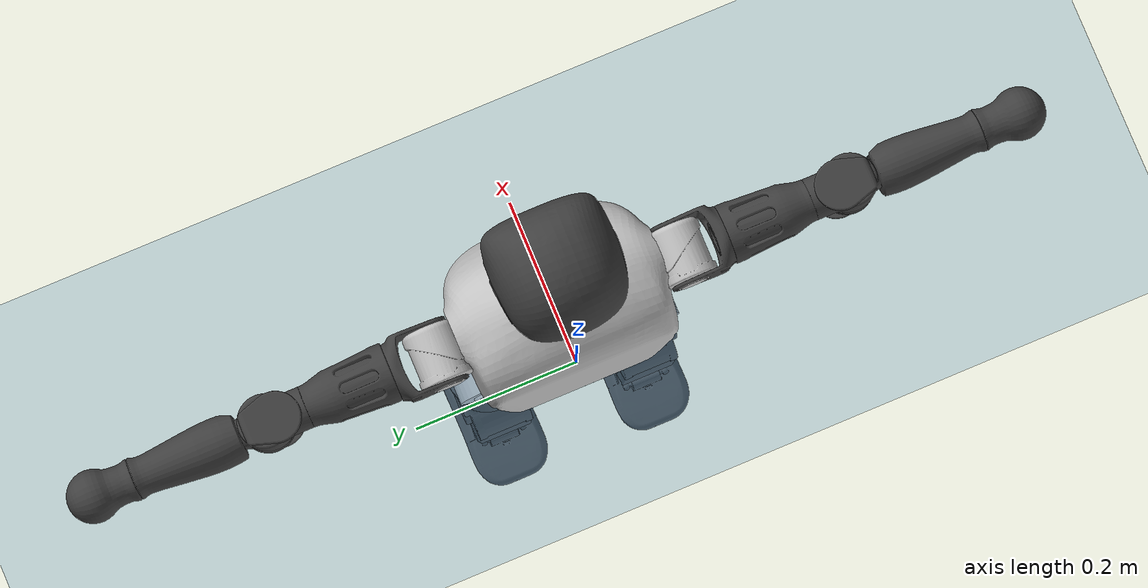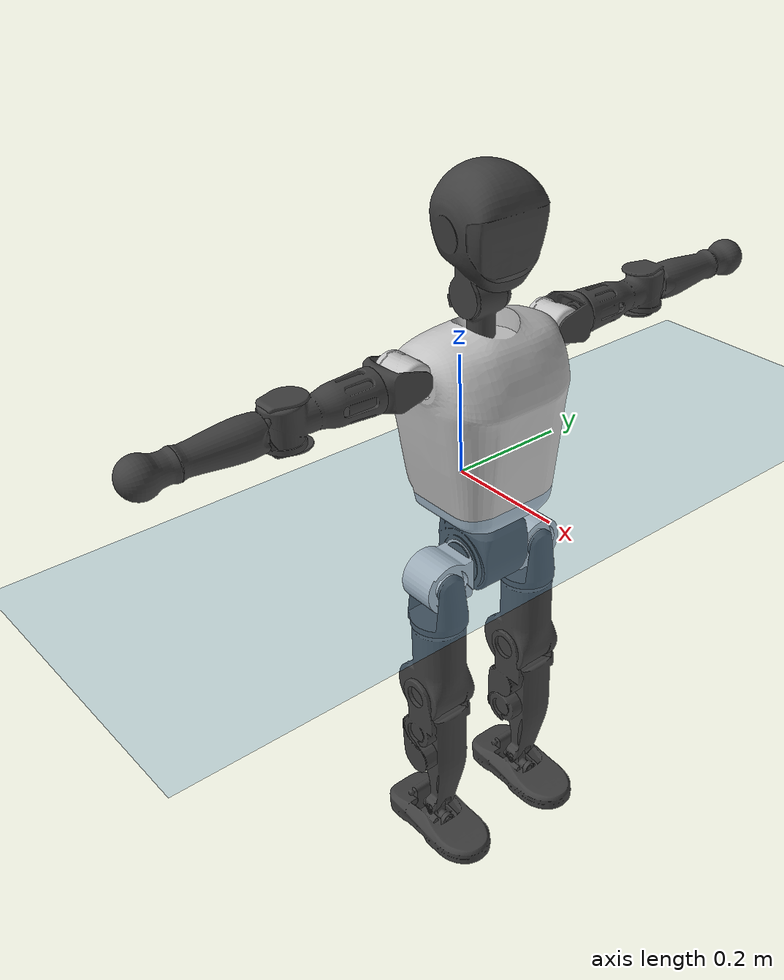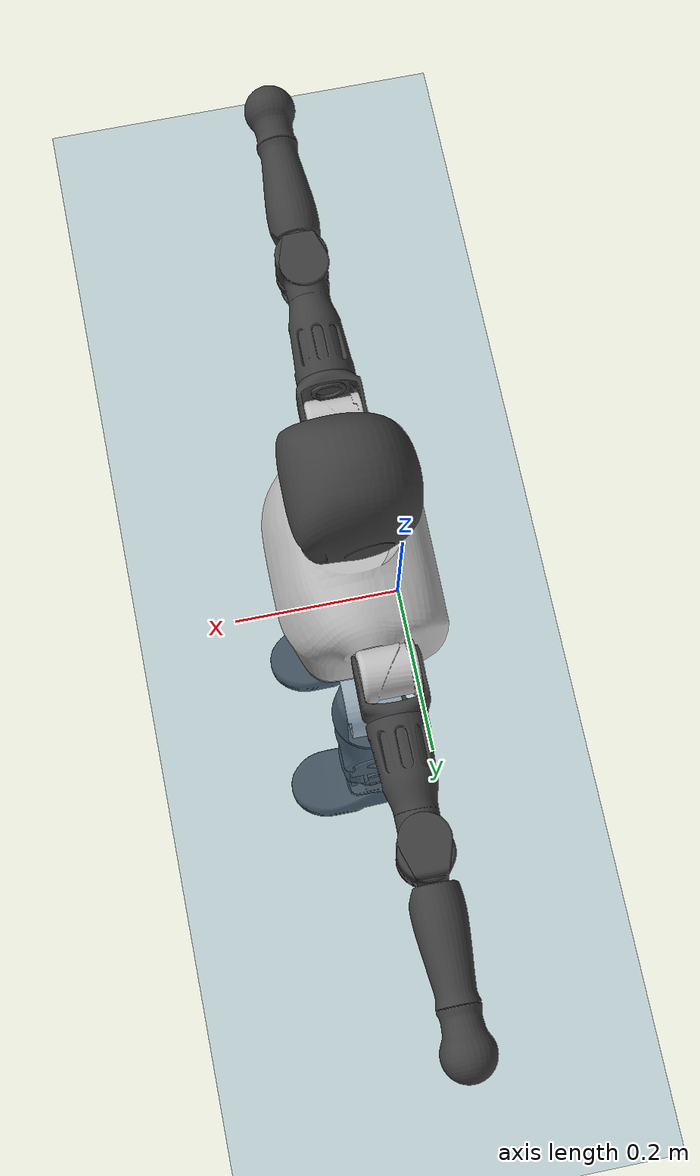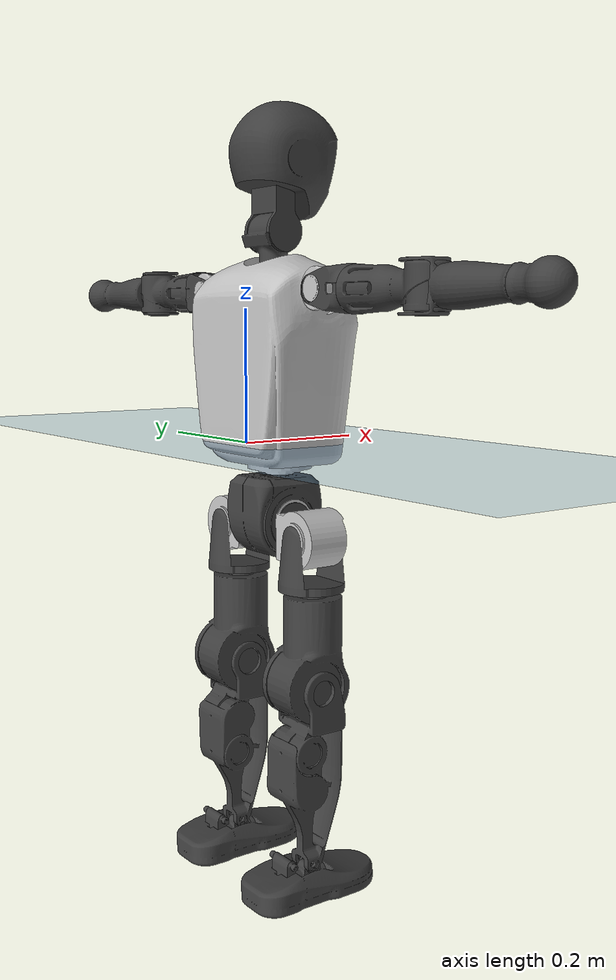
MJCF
<mujoco model="T1">
  <compiler angle="radian" assetdir="assets" balanceinertia="true" inertiafromgeom="false"/>

  <option timestep="0.005" density="1.2" viscosity="2e-05"/>

  <size nkey="1"/>

  <visual>
    <quality shadowsize="8192"/>
    <map shadowclip="0.5"/>
  </visual>

  <default>
    <default class="/">
      <joint armature="0.01" damping="0.01" frictionloss="0.1"/>
      <geom contype="0" conaffinity="0" group="1" solref="-1000 -80"/>
      <site size="0.01 0.005 0.005" group="5"/>
      <general forcelimited="true" biastype="affine" gainprm="25" biasprm="0 -25 -0.6"/>
      <default class="t1">
        <geom rgba="0.25 0.25 0.25 1"/>
        <default class="visual">
          <geom type="mesh" group="2"/>
        </default>
        <default class="collision">
          <geom group="3"/>
        </default>
        <default class="foot">
          <geom size="0.1115 0.05 0.015" type="box" condim="6" group="4" priority="1" solimp="0.015 1 0.015"/>
        </default>
        <default class="reward_collision_sphere">
          <geom group="5" rgba="1 0 0 1"/>
        </default>
      </default>
    </default>
  </default>

  <asset>
    <texture type="skybox" colorspace="auto" name="//unnamed_texture_0" builtin="gradient" rgb1="0.95 0.95 0.95" rgb2="0.95 0.95 0.95" width="100" height="600"/>
    <texture type="2d" colorspace="auto" name="texplane" builtin="checker" rgb1="0.345 0.575 0.748" rgb2="0.345 0.575 0.748" markrgb="1 1 1" width="512" height="512"/>
    <material name="MatPlane" class="/" texture="texplane" texuniform="true" texrepeat="2 2" specular="0.9"/>
    <mesh name="Trunk" class="/" file="Trunk.stl"/>
    <mesh name="H1" class="/" file="H1.stl"/>
    <mesh name="H2" class="/" file="H2.stl"/>
    <mesh name="AL1" class="/" file="AL1.stl"/>
    <mesh name="AL2" class="/" file="AL2.stl"/>
    <mesh name="AL3" class="/" file="AL3.stl"/>
    <mesh name="left_hand_link" class="/" file="left_hand_link.stl"/>
    <mesh name="AR1" class="/" file="AR1.stl"/>
    <mesh name="AR2" class="/" file="AR2.stl"/>
    <mesh name="AR3" class="/" file="AR3.stl"/>
    <mesh name="right_hand_link" class="/" file="right_hand_link.stl"/>
    <mesh name="Waist" class="/" file="Waist.stl"/>
    <mesh name="Hip_Pitch_Left" class="/" file="Hip_Pitch_Left.stl"/>
    <mesh name="Hip_Roll_Left" class="/" file="Hip_Roll_Left.stl"/>
    <mesh name="Hip_Yaw_Left" class="/" file="Hip_Yaw_Left.stl"/>
    <mesh name="Shank_Left" class="/" file="Shank_Left.stl"/>
    <mesh name="Ankle_Cross_Left" class="/" file="Ankle_Cross_Left.stl"/>
    <mesh name="left_foot_link" class="/" file="left_foot_link.stl"/>
    <mesh name="Hip_Pitch_Right" class="/" file="Hip_Pitch_Right.stl"/>
    <mesh name="Hip_Roll_Right" class="/" file="Hip_Roll_Right.stl"/>
    <mesh name="Hip_Yaw_Right" class="/" file="Hip_Yaw_Right.stl"/>
    <mesh name="Shank_Right" class="/" file="Shank_Right.stl"/>
    <mesh name="Ankle_Cross_Right" class="/" file="Ankle_Cross_Right.stl"/>
    <mesh name="right_foot_link" class="/" file="right_foot_link.stl"/>
  </asset>

  <worldbody>
    <geom name="floor" class="/" size="100 100 0.125" type="plane" group="0" material="MatPlane"/>
    <light name="toplight_shadow" class="/" pos="0 0 5" dir="0.0990148 0.0990148 -0.990148" type="directional" ambient="0.04 0.04 0.04" diffuse="0.55 0.55 0.55" specular="0.12 0.12 0.12"/>
    <light name="toplight_fill" class="/" pos="0 0 5" dir="0.0990148 0.0990148 -0.990148" type="directional" castshadow="false" ambient="0.04 0.04 0.04" diffuse="0.3 0.3 0.3" specular="0.08 0.08 0.08"/>
    <body name="trunk" childclass="t1" pos="-0.000259399 0.000219569 0.000328454" quat="1 5.06693e-05 2.80927e-05 4.14575e-05">
      <inertial pos="0.0453893 -0.000635433 0.109649" quat="0.999958 -0.00246609 -0.00810552 -0.00335237" mass="9.36052" diaginertia="0.0364053 0.0481913 0.0670922"/>
      <joint name="//unnamed_joint_0" type="free" armature="0" damping="0" frictionloss="0"/>
      <geom name="//unnamed_geom_1" class="visual" rgba="0.76 0.76 0.76 1" mesh="Trunk"/>
      <geom name="//unnamed_geom_2" class="collision" size="0.0693948 0.0925265 0.13879" pos="0.0498073 0 0.1242" type="box"/>
      <geom name="//unnamed_geom_3" class="reward_collision_sphere" size="0.106405" pos="0.0498073 0 0.1035"/>
      <geom name="//unnamed_geom_4" class="reward_collision_sphere" size="0.013879" pos="0.0498073 0.0774069 0"/>
      <geom name="//unnamed_geom_5" class="reward_collision_sphere" size="0.013879" pos="0.0498073 -0.0774069 0"/>
      <geom name="//unnamed_geom_6" class="reward_collision_sphere" size="0.013879" pos="0.0498073 0.0974416 0.186301"/>
      <geom name="//unnamed_geom_7" class="reward_collision_sphere" size="0.013879" pos="0.0498073 -0.0974416 0.186301"/>
      <site name="imu" pos="-0.00778682 0.00494255 0.000701272" size="0.00925265"/>
      <camera name="track" pos="0 -1.82134 0" quat="0.707107 0.707107 0 0" mode="trackcom"/>
      <camera name="ego_camera" pos="0.101275 0 0.434701" quat="-0.5 -0.5 0.5 0.5"/>
      <body name="H1" pos="0.0492889 -0.00200218 0.249254" quat="1 -0.000220328 -0.000267261 1.65028e-05">
        <inertial pos="-0.000908062 -0.00101886 0.0603789" quat="0.758811 -0.0147661 0.00338333 0.651135" mass="0.355581" diaginertia="9.54742e-05 0.00013736 0.000179461"/>
        <joint name="AAHead_yaw" pos="0 0 0" axis="0.00577498 0.00432331 0.999974" stiffness="6.27718e-05" range="-1.57096 1.55455" armature="0.00972586" damping="0.0112675" frictionloss="0.0890678"/>
        <geom name="//unnamed_geom_8" class="visual" mesh="H1"/>
        <body name="H2" pos="-0.000778644 8.21492e-05 0.0639526" quat="1 -0.000218143 -7.56141e-07 -0.000124127">
          <inertial pos="0.00593821 -0.00112822 0.102304" quat="0.988479 0.105831 -0.0747023 -0.0782846" mass="0.507676" diaginertia="0.000818571 0.00121033 0.00204177"/>
          <joint name="Head_pitch" pos="0 0 0" axis="0.000312499 -1 -8.60435e-06" range="-1.23181 0.349415" armature="0.00916803" damping="0.00757333" frictionloss="0.0920878"/>
          <geom name="//unnamed_geom_9" class="visual" mesh="H2"/>
          <geom name="//unnamed_geom_10" class="collision" size="0.0740212" pos="0.00830122 0 0.11385"/>
          <geom name="//unnamed_geom_11" class="reward_collision_sphere" size="0.0832738" pos="0.0166024 0 0.1035"/>
        </body>
      </body>
      <body name="AL1" pos="0.0477031 0.0992767 0.226132" quat="1 0.000103415 0.000446244 -3.78355e-05">
        <inertial pos="-0.00243203 0.0422737 -0.000489917" quat="0.502991 0.495068 -0.505692 0.496169" mass="0.411304" diaginertia="0.000530189 0.000795703 0.000345685"/>
        <joint name="Left_Shoulder_Pitch" pos="0 0 0" axis="0.00284896 0.999996 0.000351765" stiffness="0.00195815" range="-3.32735 1.22346" armature="0.00912201" damping="0.00676395" frictionloss="0.0929632"/>
        <geom name="//unnamed_geom_12" class="visual" rgba="0.76 0.76 0.76 1" mesh="AL1"/>
        <body name="AL2" pos="0.000501173 0.0448179 -0.000313663" quat="1 0.000428857 0.000132646 0.000200592">
          <inertial pos="0.00295037 0.0349563 -0.00111647" quat="0.487928 0.511713 -0.488047 0.511748" mass="0.128353" diaginertia="0.00016187 0.000225432 0.000214817"/>
          <joint name="Left_Shoulder_Roll" pos="0 0 0" axis="-0.999999 0.00156891 0.000564663" range="-1.57715 1.7186" armature="0.00920439" damping="0.0154902" frictionloss="0.0900608"/>
          <geom name="//unnamed_geom_13" class="visual" mesh="AL2"/>
          <body name="AL3" pos="0.00242426 0.0556449 0.00139935" quat="1 -0.000136841 -6.69769e-05 -3.19321e-05">
            <inertial pos="-0.000658498 0.0774865 0.000265226" quat="0.705024 0.709181 -0.00113466 0.00154795" mass="0.799128" diaginertia="0.00508152 0.00794486 0.000732274"/>
            <joint name="Left_Elbow_Pitch" pos="0 0 0" axis="-0.00132306 -0.999996 -0.00239942" range="-2.28326 2.28379" armature="0.00884783" damping="0.0109173" frictionloss="0.0939482"/>
            <geom name="//unnamed_geom_14" class="visual" mesh="AL3"/>
            <geom name="//unnamed_geom_15" class="collision" size="0.0277579 0.0693948" pos="0 0.0455335 0" quat="0.707105 0.707108 0 0" type="cylinder"/>
            <geom name="//unnamed_geom_16" class="reward_collision_sphere" size="0.0333095"/>
            <body name="left_hand_link" pos="-0.000761633 0.134435 0.000868124" quat="1 3.73858e-05 0.000109925 0.000162065">
              <inertial pos="0.00188662 0.099073 2.37081e-05" quat="0.706538 0.707662 -0.00433668 0.000307691" mass="0.258157" diaginertia="0.00319414 0.00505772 0.000249403"/>
              <joint name="Left_Elbow_Yaw" pos="0 0 0" axis="0.00454431 0.00145772 0.999989" range="-2.4621 0.0127809" armature="0.00941752" damping="0.011559" frictionloss="0.0947476"/>
              <geom name="//unnamed_geom_17" class="visual" mesh="left_hand_link"/>
              <geom name="//unnamed_geom_18" class="collision" size="0.0277579 0.0809606" pos="0 0.118387 0" quat="0.707105 0.707108 0 0" type="cylinder"/>
              <geom name="//unnamed_geom_19" class="reward_collision_sphere" size="0.0462632"/>
              <geom name="//unnamed_geom_20" class="reward_collision_sphere" size="0.0323843" pos="0 0.100174 0"/>
              <geom name="//unnamed_geom_21" class="reward_collision_sphere" size="0.0323843" pos="0 0.195794 0"/>
            </body>
          </body>
        </body>
      </body>
      <body name="AR1" pos="0.0482787 -0.0970022 0.226944" quat="1 -0.000175928 0.000463464 0.000129658">
        <inertial pos="-0.0019039 -0.0417613 -0.000118453" quat="0.503893 0.495923 -0.504391 0.495724" mass="0.416332" diaginertia="0.000543606 0.000806966 0.000347068"/>
        <joint name="Right_Shoulder_Pitch" pos="0 0 0" axis="-0.00025985 -1 -2.16822e-05" stiffness="0.00325115" range="-1.22154 3.29396" armature="0.00918556" damping="0" frictionloss="0.0954237"/>
        <geom name="//unnamed_geom_22" class="visual" rgba="0.76 0.76 0.76 1" mesh="AR1"/>
        <body name="AR2" pos="0.000133766 -0.0432589 -0.00120745" quat="1 -2.60993e-05 -0.000102267 6.49135e-05">
          <inertial pos="0.00373955 -0.0341919 -0.00123321" quat="0.510709 0.487173 -0.513743 0.487757" mass="0.12594" diaginertia="0.000157818 0.000211163 0.000206662"/>
          <joint name="Right_Shoulder_Roll" pos="0 0 0" axis="-0.999983 0.00578547 0.000692601" range="-1.70274 1.56271" armature="0.00884785" damping="0.0160187" frictionloss="0.0925837"/>
          <geom name="//unnamed_geom_23" class="visual" mesh="AR2"/>
          <body name="AR3" pos="-0.000244405 -0.0556912 -0.000916033" quat="1 -0.000129168 6.27217e-05 -6.29875e-06">
            <inertial pos="-0.00188608 -0.0786509 0.000294884" quat="0.708039 0.706162 0.00306202 -0.00238697" mass="0.810293" diaginertia="0.00507772 0.00803696 0.000754544"/>
            <joint name="Right_Elbow_Pitch" pos="0 0 0" axis="-0.0045877 0.999989 0.000867673" range="-2.27198 2.27441" armature="0.00916877" damping="0.0121576" frictionloss="0.085609"/>
            <geom name="//unnamed_geom_24" class="visual" mesh="AR3"/>
            <geom name="//unnamed_geom_25" class="collision" size="0.0277579 0.0693948" pos="0 -0.0455335 0" quat="0.707105 0.707108 0 0" type="cylinder"/>
            <geom name="//unnamed_geom_26" class="reward_collision_sphere" size="0.0333095"/>
            <body name="right_hand_link" pos="-0.00103483 -0.134398 -0.000216186" quat="1 -5.56439e-05 1.6212e-05 3.49256e-05">
              <inertial pos="-0.000149205 -0.0998625 0.00197699" quat="0.706544 0.707669 2.83473e-05 0.000337714" mass="0.258711" diaginertia="0.00319155 0.0049899 0.000256932"/>
              <joint name="Right_Elbow_Yaw" pos="0 0 0" axis="0.00191769 -0.00399002 0.99999" range="-0.0138637 2.45555" armature="0.00939709" damping="0.0124536" frictionloss="0.086652"/>
              <geom name="//unnamed_geom_27" class="visual" mesh="right_hand_link"/>
              <geom name="//unnamed_geom_28" class="collision" size="0.0277579 0.0809606" pos="0 -0.118387 0" quat="0.707105 0.707108 0 0" type="cylinder"/>
              <geom name="//unnamed_geom_29" class="reward_collision_sphere" size="0.0462632"/>
              <geom name="//unnamed_geom_30" class="reward_collision_sphere" size="0.0323843" pos="0 -0.100174 0"/>
              <geom name="//unnamed_geom_31" class="reward_collision_sphere" size="0.0323843" pos="0 -0.195794 0"/>
            </body>
          </body>
        </body>
      </body>
      <body name="Waist" pos="0.0526415 -0.000104256 -0.120035" quat="1 9.95966e-05 4.81998e-05 1.40574e-05">
        <inertial pos="0.00122723 -0.000564029 0.00766138" quat="0.98309 0.00142519 -0.183081 0.0036755" mass="2.04494" diaginertia="0.00216843 0.00331361 0.00577502"/>
        <joint name="Waist" pos="0 0 0" axis="-0.000679978 -0.00228002 0.999997" range="-1.56097 1.58298" armature="0.00924017" damping="0.0114735" frictionloss="0.0868142"/>
        <geom name="//unnamed_geom_32" class="visual" mesh="Waist"/>
        <body name="Hip_Pitch_Left" pos="-0.000279685 0.0963536 0.000754537" quat="1 -0.000403376 -7.27123e-05 0.000113707">
          <inertial pos="0.000165277 -0.00755686 -0.0196653" quat="0.975078 0.221572 0.0113246 -0.00118107" mass="0.807547" diaginertia="0.000713892 0.000916317 0.00150889"/>
          <joint name="Left_Hip_Pitch" pos="0 0 0" axis="-0.00273013 0.999995 -0.00187533" range="-1.78341 1.56965" armature="0.00921333" damping="0.0143707" frictionloss="0.0920112"/>
          <geom name="//unnamed_geom_33" class="visual" rgba="0.76 0.76 0.76 1" mesh="Hip_Pitch_Left"/>
          <body name="Hip_Roll_Left" pos="0.00161934 0.000881909 -0.0205063" quat="1 0.000606523 0.000335209 0.000575935">
            <inertial pos="0.000788421 0.000270098 -0.0556922" quat="0.707419 -0.00618752 -0.00580149 0.706743" mass="0.296221" diaginertia="0.000656014 0.000929312 0.000600056"/>
            <joint name="Left_Hip_Roll" pos="0 0 0" axis="-0.999974 -0.00671328 -0.00244741" range="-1.53678 0.190597" armature="0.00952739" damping="0.00908333" frictionloss="0.0970735"/>
            <geom name="//unnamed_geom_34" class="visual" mesh="Hip_Roll_Left"/>
            <geom name="//unnamed_geom_35" class="reward_collision_sphere" size="0.0508895"/>
            <body name="Hip_Yaw_Left" pos="0.000246868 0.000633202 -0.0860725" quat="1 -0.000415125 0.000457218 -0.000197339">
              <inertial pos="-0.00713259 0.000499521 -0.0916515" quat="0.698178 -0.0346264 -0.0310098 0.714413" mass="1.71349" diaginertia="0.0103057 0.0157584 0.0030816"/>
              <joint name="Left_Hip_Yaw" pos="0 0 0" axis="0.00128309 -0.00103224 -0.999999" range="-0.970372 1.02783" armature="0.00920225" damping="0.00941645" frictionloss="0.095608"/>
              <geom name="//unnamed_geom_36" class="visual" mesh="Hip_Yaw_Left"/>
              <geom name="//unnamed_geom_37" class="collision" size="0.0462632 0.0740212" type="cylinder"/>
              <body name="Shank_Left" pos="-0.0108686 0.000796096 -0.138106" quat="1 1.08094e-05 0.000108448 2.63404e-05">
                <inertial pos="-0.00669427 -7.66591e-05 -0.129511" quat="0.997731 0.00159844 -0.0148834 0.0656478" mass="1.37525" diaginertia="0.0136461 0.0221127 0.00219619"/>
                <joint name="Left_Knee_Pitch" pos="0 0 0" axis="0.000119464 1 0.000172516" stiffness="0.00189968" range="-0.00845778 2.34526" armature="0.00924746" damping="0.00946563" frictionloss="0.099983"/>
                <geom name="//unnamed_geom_38" class="visual" mesh="Shank_Left"/>
                <geom name="//unnamed_geom_39" class="collision" size="0.0462632 0.0693948" pos="0 0 -0.1242" type="cylinder"/>
                <geom name="//unnamed_geom_40" class="reward_collision_sphere" size="0.0601422"/>
                <body name="Ankle_Cross_Left" pos="0.00115674 0.000524043 -0.290878" quat="1 -1.91865e-05 -0.000133491 1.9376e-05">
                  <inertial pos="-0.00282279 2.0649e-05 -0.00879979" quat="0.441129 0.552617 0.551503 0.442565" mass="0.0573544" diaginertia="1.11919e-05 1.59481e-05 1.33389e-05"/>
                  <joint name="Left_Ankle_Pitch" pos="0 0 0" axis="1.869e-06 1 1.14984e-06" range="-0.866885 0.351762" armature="0.0100528" damping="0.0141938" frictionloss="0.0969788"/>
                  <geom name="//unnamed_geom_41" class="visual" mesh="Ankle_Cross_Left"/>
                  <body name="left_foot_link" pos="0.00117552 0.000880299 -0.0116158" quat="1 1.90228e-05 4.04112e-05 -6.42586e-08">
                    <inertial pos="-0.00169386 5.77808e-05 -0.0094223" quat="0.000279294 0.620859 -0.0021366 0.78392" mass="0.545742" diaginertia="0.00107248 0.00149668 0.00258655"/>
                    <joint name="Left_Ankle_Roll" pos="0 0 0" axis="-1 0.000407107 0.000332148" stiffness="0.000457013" range="-0.456069 0.458014" armature="0.00915365" damping="0.000801689" frictionloss="0.0906923"/>
                    <geom name="//unnamed_geom_42" class="visual" mesh="left_foot_link"/>
                    <geom name="left_foot" class="foot" size="0.101623 0.044931 0.0146354" pos="0.00830122 0 -0.015525"/>
                    <geom name="//unnamed_geom_44" class="reward_collision_sphere" size="0.0481138" pos="0.00830122 0 -0.015525"/>
                    <geom name="//unnamed_geom_45" class="reward_collision_sphere" size="0.0277579" pos="0.0788616 -0.0209454 -0.015525"/>
                    <geom name="//unnamed_geom_46" class="reward_collision_sphere" size="0.0277579" pos="-0.0581085 -0.0209454 -0.015525"/>
                    <site name="left_foot" class="foot" pos="0.00830122 0 -0.015525" size="0.00925265"/>
                  </body>
                </body>
              </body>
            </body>
          </body>
        </body>
        <body name="Hip_Pitch_Right" pos="0.000227896 -0.096768 0.000564953" quat="1 -1.84656e-05 0.00011391 1.01244e-05">
          <inertial pos="-1.37315e-05 0.00682282 -0.0193817" quat="0.973245 -0.229038 0.0180302 -0.00334133" mass="0.813943" diaginertia="0.000696735 0.00093212 0.00146624"/>
          <joint name="Right_Hip_Pitch" pos="0 0 0" axis="-0.00498206 -0.999982 -0.00321791" range="-1.61288 1.83299" armature="0.00933152" damping="0.0118343" frictionloss="0.085742"/>
          <geom name="//unnamed_geom_47" class="visual" rgba="0.76 0.76 0.76 1" mesh="Hip_Pitch_Right"/>
          <body name="Hip_Roll_Right" pos="0.00186311 0.000136445 -0.0212341" quat="1 0.000257827 -8.95457e-05 0.000102118">
            <inertial pos="0.00175783 -0.000626459 -0.0550057" quat="0.706612 -0.00457977 -0.00275936 0.707581" mass="0.303056" diaginertia="0.000680703 0.000955544 0.000617099"/>
            <joint name="Right_Hip_Roll" pos="0 0 0" axis="-0.999932 0.0103636 0.00532749" stiffness="0.00442822" range="-0.198851 1.5795" armature="0.00944359" damping="0.00970664" frictionloss="0.0925395"/>
            <geom name="//unnamed_geom_48" class="visual" mesh="Hip_Roll_Right"/>
            <geom name="//unnamed_geom_49" class="reward_collision_sphere" size="0.0508895"/>
            <body name="Hip_Yaw_Right" pos="-0.000546326 -0.00102584 -0.0858585" quat="1 -0.000171924 -0.000207932 -1.05688e-05">
              <inertial pos="-0.00634281 0.000906613 -0.0919697" quat="0.720358 -0.0263233 -0.0344875 0.692244" mass="1.71936" diaginertia="0.0101896 0.0160393 0.00310111"/>
              <joint name="Right_Hip_Yaw" pos="0 0 0" axis="0.00125515 -0.00246561 -0.999996" range="-0.987659 0.99504" armature="0.00920819" damping="0.0128736" frictionloss="0.0926215"/>
              <geom name="//unnamed_geom_50" class="visual" mesh="Hip_Yaw_Right"/>
              <geom name="//unnamed_geom_51" class="collision" size="0.0462632 0.0740212" type="cylinder"/>
              <body name="Shank_Right" pos="-0.0121255 -0.00215484 -0.138768" quat="1 -5.23862e-05 -2.59323e-05 -9.68967e-05">
                <inertial pos="-0.00687524 0.00188392 -0.126048" quat="0.999338 0.00105293 -0.0214264 -0.0293679" mass="1.43497" diaginertia="0.0137801 0.0219422 0.00236986"/>
                <joint name="Right_Knee_Pitch" pos="0 0 0" axis="0.000256563 -0.999999 0.00157573" range="-2.32626 -0.00492854" armature="0.00918049" damping="0.00315597" frictionloss="0.0969712"/>
                <geom name="//unnamed_geom_52" class="visual" mesh="Shank_Right"/>
                <geom name="//unnamed_geom_53" class="collision" size="0.0462632 0.0693948" pos="0 0 -0.1242" type="cylinder"/>
                <geom name="//unnamed_geom_54" class="reward_collision_sphere" size="0.0601422"/>
                <body name="Ankle_Cross_Right" pos="-0.000419307 -0.000278713 -0.290814" quat="1 -0.000194108 -0.000129428 -4.3603e-05">
                  <inertial pos="-0.00246403 -0.000386846 -0.00883724" quat="0.447697 0.552697 0.544741 0.444242" mass="0.0582075" diaginertia="1.14797e-05 1.54788e-05 1.33005e-05"/>
                  <joint name="Right_Ankle_Pitch" pos="0 0 0" axis="-7.8958e-05 -1 -1.26373e-05" range="-0.369 0.867994" armature="0.0091831" damping="0" frictionloss="0.0935002"/>
                  <geom name="//unnamed_geom_55" class="visual" mesh="Ankle_Cross_Right"/>
                  <body name="right_foot_link" pos="-0.00141825 -0.000837317 -0.0111021" quat="1 -2.68049e-06 3.3594e-05 -2.1441e-07">
                    <inertial pos="0.000266456 -0.00082007 -0.00830072" quat="-0.00255663 0.620397 0.000229502 0.784284" mass="0.543412" diaginertia="0.00107598 0.00147794 0.00259664"/>
                    <joint name="Right_Ankle_Roll" pos="0 0 0" axis="-1 0.000141786 0.000467477" range="-0.435422 0.446244" armature="0.00906072" damping="0.00602188" frictionloss="0.0935391"/>
                    <geom name="//unnamed_geom_56" class="visual" mesh="right_foot_link"/>
                    <geom name="right_foot" class="foot" size="0.0972511 0.0430838 0.0135403" pos="0.00830122 0 -0.015525"/>
                    <geom name="//unnamed_geom_58" class="reward_collision_sphere" size="0.0370106"/>
                    <geom name="//unnamed_geom_59" class="reward_collision_sphere" size="0.0277579" pos="0.00830122 0 -0.015525"/>
                    <geom name="//unnamed_geom_60" class="reward_collision_sphere" size="0.0277579" pos="0.0788616 0.0209454 -0.015525"/>
                    <geom name="//unnamed_geom_61" class="reward_collision_sphere" size="0.0277579" pos="-0.0581085 0.0209454 -0.015525"/>
                    <site name="right_foot" class="foot" pos="0.00830122 0 -0.015525" size="0.00925265"/>
                  </body>
                </body>
              </body>
            </body>
          </body>
        </body>
      </body>
    </body>
  </worldbody>

  <contact>
    <pair class="/" geom1="floor" geom2="left_foot" name="//unnamed_contact_0"/>
    <pair class="/" geom1="floor" geom2="right_foot" name="//unnamed_contact_1"/>
  </contact>

  <actuator>
    <general name="AAHead_yaw" class="/" joint="AAHead_yaw" forcerange="-6.46912 6.46912" gainprm="22.0903" biasprm="0 -22.0903 -0.536002"/>
    <general name="Head_pitch" class="/" joint="Head_pitch" forcerange="-6.47772 6.47772" gainprm="22.0903" biasprm="0 -22.0903 -0.536002"/>
    <general name="Left_Shoulder_Pitch" class="/" joint="Left_Shoulder_Pitch" forcerange="-16.8526 16.8526" gainprm="22.0903" biasprm="0 -22.0903 -0.536002"/>
    <general name="Left_Shoulder_Roll" class="/" joint="Left_Shoulder_Roll" forcerange="-16.5501 16.5501" gainprm="22.0903" biasprm="0 -22.0903 -0.536002"/>
    <general name="Left_Elbow_Pitch" class="/" joint="Left_Elbow_Pitch" forcerange="-16.8409 16.8409" gainprm="22.0903" biasprm="0 -22.0903 -0.536002"/>
    <general name="Left_Elbow_Yaw" class="/" joint="Left_Elbow_Yaw" forcerange="-16.3714 16.3714" gainprm="22.0903" biasprm="0 -22.0903 -0.536002"/>
    <general name="Right_Shoulder_Pitch" class="/" joint="Right_Shoulder_Pitch" forcerange="-17.3776 17.3776" gainprm="22.0903" biasprm="0 -22.0903 -0.536002"/>
    <general name="Right_Shoulder_Roll" class="/" joint="Right_Shoulder_Roll" forcerange="-16.8814 16.8814" gainprm="22.0903" biasprm="0 -22.0903 -0.536002"/>
    <general name="Right_Elbow_Pitch" class="/" joint="Right_Elbow_Pitch" forcerange="-16.679 16.679" gainprm="22.0903" biasprm="0 -22.0903 -0.536002"/>
    <general name="Right_Elbow_Yaw" class="/" joint="Right_Elbow_Yaw" forcerange="-16.3719 16.3719" gainprm="22.0903" biasprm="0 -22.0903 -0.536002"/>
    <general name="Waist" class="/" joint="Waist" forcerange="-27.5549 27.5549" gainprm="22.0903" biasprm="0 -22.0903 -0.536002"/>
    <general name="Left_Hip_Pitch" class="/" joint="Left_Hip_Pitch" forcerange="-41.6125 41.6125" gainprm="22.0903" biasprm="0 -22.0903 -0.536002"/>
    <general name="Left_Hip_Roll" class="/" joint="Left_Hip_Roll" forcerange="-27.9343 27.9343" gainprm="22.0903" biasprm="0 -22.0903 -0.536002"/>
    <general name="Left_Hip_Yaw" class="/" joint="Left_Hip_Yaw" forcerange="-27.57 27.57" gainprm="22.0903" biasprm="0 -22.0903 -0.536002"/>
    <general name="Left_Knee_Pitch" class="/" joint="Left_Knee_Pitch" forcerange="-53.1803 53.1803" gainprm="22.0903" biasprm="0 -22.0903 -0.536002"/>
    <general name="Left_Ankle_Pitch" class="/" joint="Left_Ankle_Pitch" forcerange="-19.0687 19.0687" gainprm="22.0903" biasprm="0 -22.0903 -0.536002"/>
    <general name="Left_Ankle_Roll" class="/" joint="Left_Ankle_Roll" forcerange="-13.8878 13.8878" gainprm="22.0903" biasprm="0 -22.0903 -0.536002"/>
    <general name="Right_Hip_Pitch" class="/" joint="Right_Hip_Pitch" forcerange="-41.0131 41.0131" gainprm="22.0903" biasprm="0 -22.0903 -0.536002"/>
    <general name="Right_Hip_Roll" class="/" joint="Right_Hip_Roll" forcerange="-27.4012 27.4012" gainprm="22.0903" biasprm="0 -22.0903 -0.536002"/>
    <general name="Right_Hip_Yaw" class="/" joint="Right_Hip_Yaw" forcerange="-28.6892 28.6892" gainprm="22.0903" biasprm="0 -22.0903 -0.536002"/>
    <general name="Right_Knee_Pitch" class="/" joint="Right_Knee_Pitch" forcerange="-54.5828 54.5828" gainprm="22.0903" biasprm="0 -22.0903 -0.536002"/>
    <general name="Right_Ankle_Pitch" class="/" joint="Right_Ankle_Pitch" forcerange="-17.7944 17.7944" gainprm="22.0903" biasprm="0 -22.0903 -0.536002"/>
    <general name="Right_Ankle_Roll" class="/" joint="Right_Ankle_Roll" forcerange="-13.4428 13.4428" gainprm="22.0903" biasprm="0 -22.0903 -0.536002"/>
  </actuator>

  <sensor>
    <gyro site="imu" name="imu_angular_velocity"/>
    <velocimeter site="imu" name="imu_linear_velocity"/>
    <framelinvel objtype="site" objname="left_foot" name="left_foot_global_linear_velocity"/>
    <framelinvel objtype="site" objname="right_foot" name="right_foot_global_linear_velocity"/>
  </sensor>

  <keyframe>
    <key name="home" qpos="0 0 0.6385 1 0 0 0 0 0 0 1.4 0 -0.4 0 -1.4 0 0.4 0 -0.4 0 0 0.8 -0.4 0 0.4 0 0 -0.8 0.4 0"/>
  </keyframe>
</mujoco>
